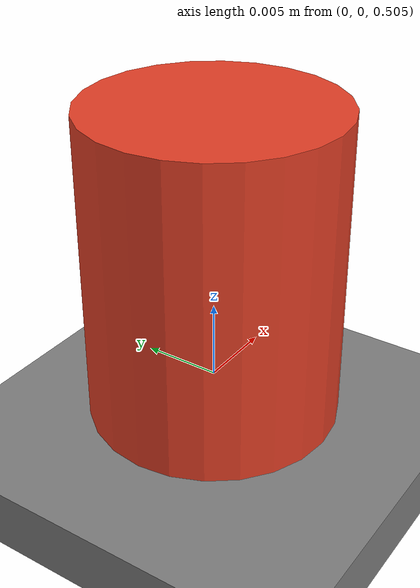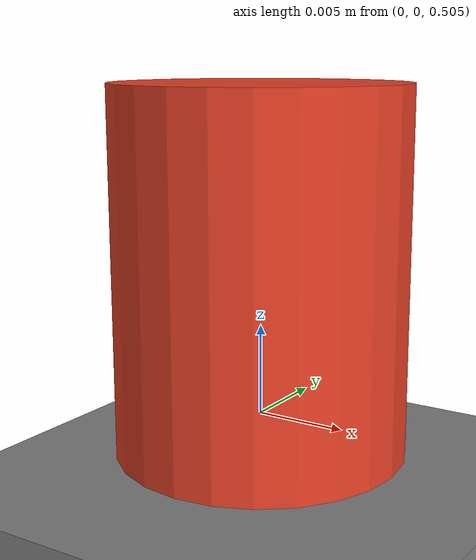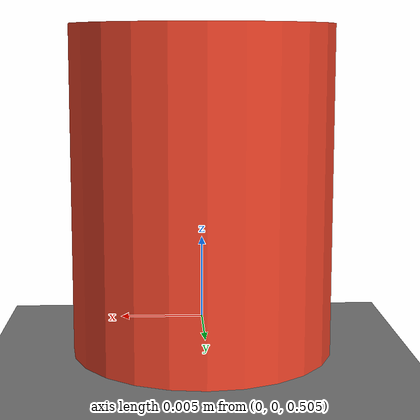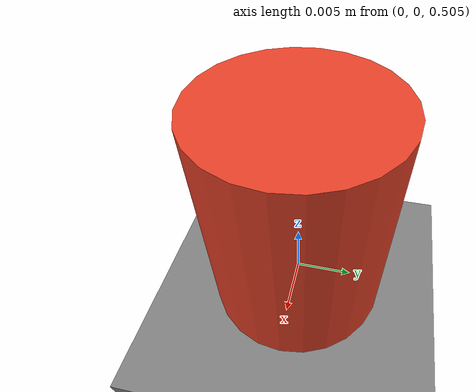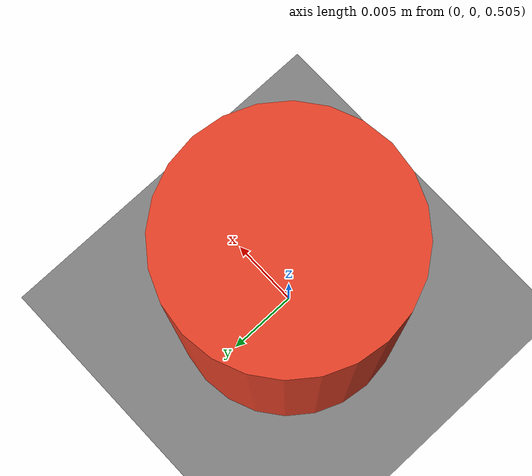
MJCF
<mujoco model="payload_slider_smoke_test">
  <compiler angle="radian"/>
  <option timestep="0.002" gravity="0 0 -9.81"/>
  <default>
    <geom friction="0.8 0.005 0.0001"/>
  </default>
  <worldbody>
    <light pos="0 0 2"/>
    <geom name="floor" type="plane" size="1 1 0.1" rgba="0.2 0.25 0.3 1"/>
    <body name="tray" pos="0 0 0.5">
      <geom name="tray_geom" type="box" size="0.06 0.04 0.002" mass="0.02"
            contype="0" conaffinity="0"/>
      <body name="payload" pos="0 0 0.013">
        <joint name="pay_slide" type="slide" axis="1 0 0" range="-0.05 0.05"
               damping="0.01" frictionloss="0.02"/>
        <geom name="payload_geom" type="cylinder" size="0.008 0.01" mass="0.02"
              contype="0" conaffinity="0" rgba="0.9 0.25 0.15 1"/>
      </body>
    </body>
  </worldbody>
</mujoco>
